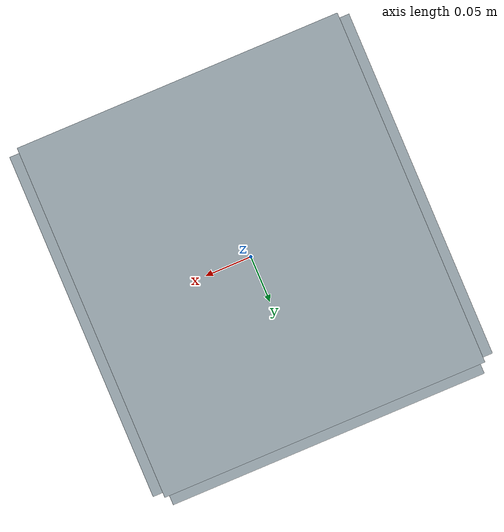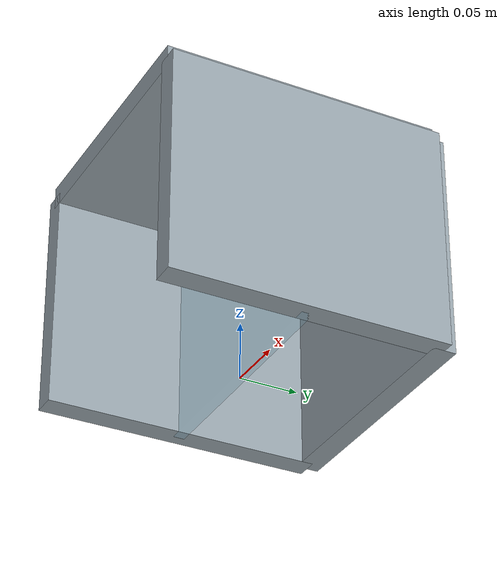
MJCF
<?xml version="1.0" encoding="utf-8"?>
<mujoco model="salt_spray_chamber">
  <compiler angle="radian" autolimits="true"/>
  <default>
    <default class="body"><geom contype="1" conaffinity="1"/></default>
  </default>
  <worldbody>
    <body name="base">
      <geom type="box" size="0.11 0.01 0.1" pos="0 0.12 0.1" rgba="0.6 0.65 0.68 1" class="body"/>
      <geom type="box" size="0.01 0.12 0.1" pos="-0.11 0 0.1" rgba="0.6 0.65 0.68 1" class="body"/>
      <geom type="box" size="0.01 0.12 0.1" pos="0.11 0 0.1" rgba="0.6 0.65 0.68 1" class="body"/>
      <geom type="box" size="0.11 0.12 0.01" pos="0 0 0.2" rgba="0.6 0.65 0.68 1" class="body"/>
      <body name="door" pos="-0.11 0.0 0.1">
        <joint name="door_joint" type="hinge" axis="0 0 1" range="0 1.8" damping="0.6" frictionloss="0.3"/>
  <geom type="box" size="0.11 0.005 0.1" pos="0.11 0 0" rgba="0.6 0.8 0.9 0.35" class="body"/>
      </body>
    </body>
  </worldbody>
</mujoco>
